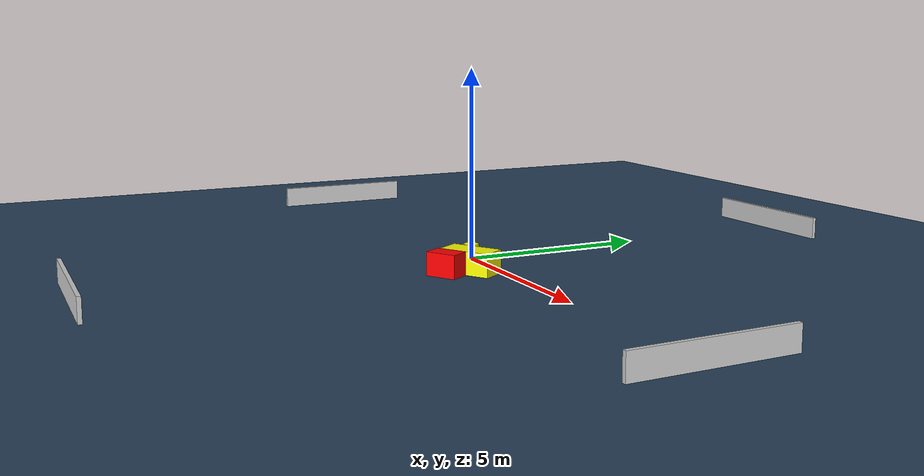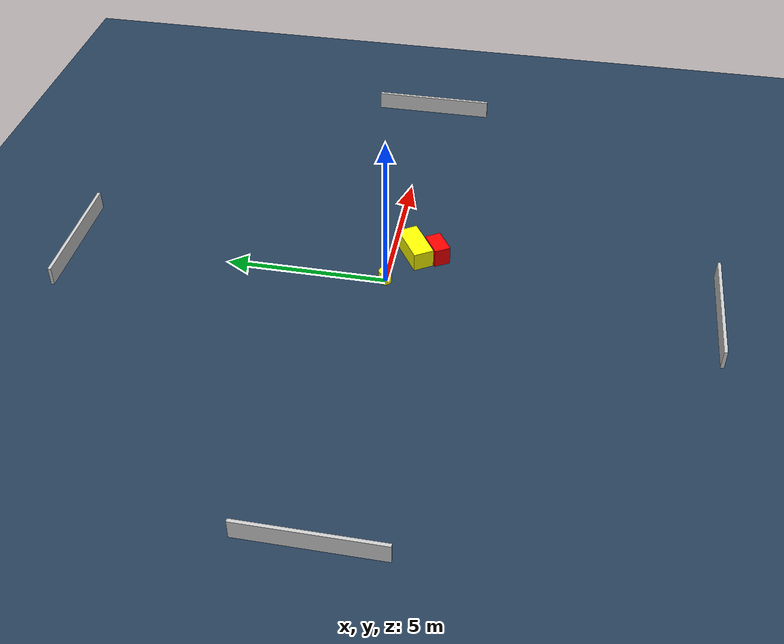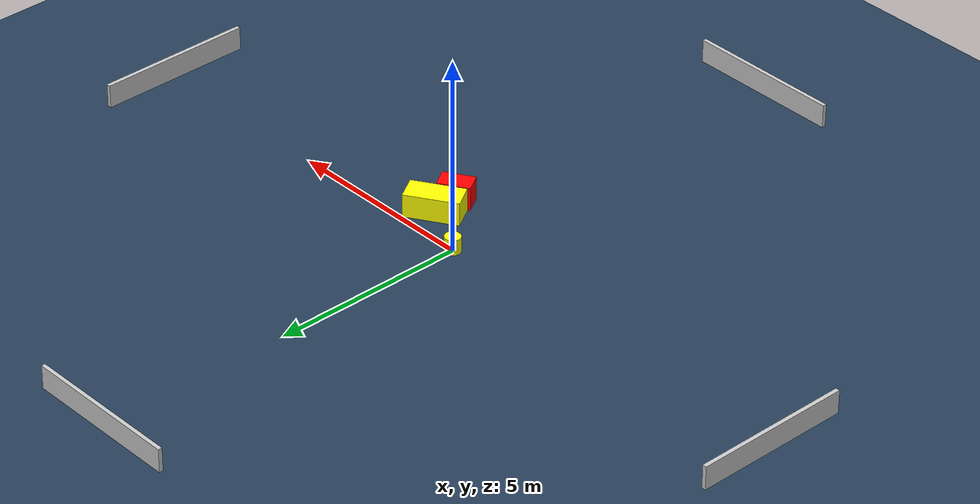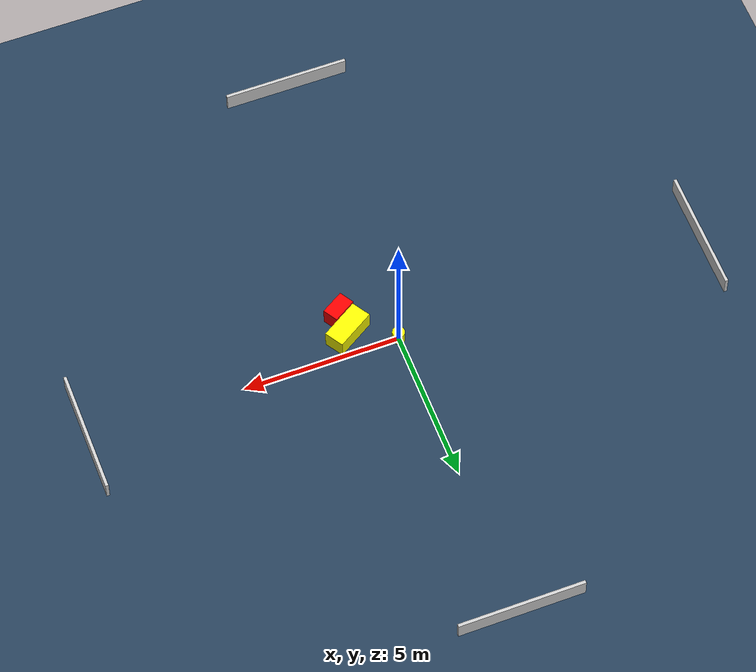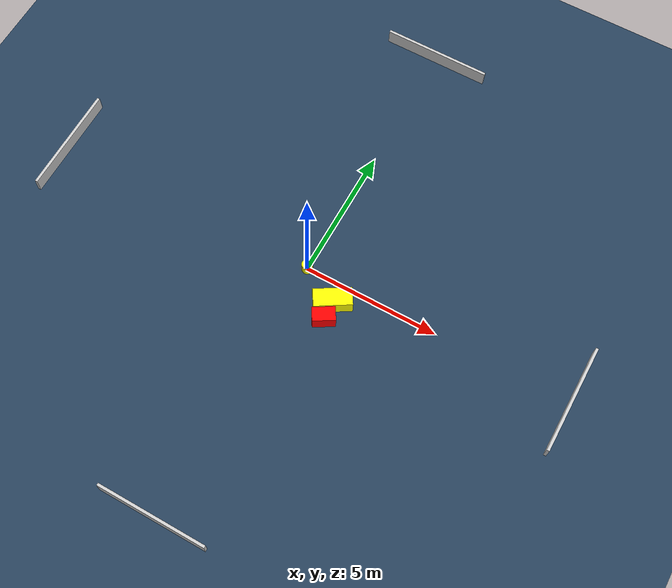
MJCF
<?xml version="1.0" ?>
<mujoco model="generated_environment">
  <option timestep="0.01" integrator="RK4" cone="elliptic"/>
  <default>
    <geom density="1"/>
  </default>
  <asset>
    <texture builtin="gradient" height="3072" name="skybox" rgb1="0.3 0.5 0.7" rgb2="0 0 0" type="skybox" width="512"/>
    <texture builtin="checker" height="300" name="groundplane" rgb1="0.2 0.3 0.4" rgb2="0.1 0.2 0.3" type="2d" width="300"/>
    <material name="groundplane" reflectance="0.2" texrepeat="5 5" texture="groundplane"/>
  </asset>
  <worldbody>
    <light dir="0 0 -1" directional="true" pos="0 0 1.5"/>
    <geom condim="3" friction="0.5 0.005 0.001" material="groundplane" name="floor" pos="0 0 0" size="0 0 0.05" type="plane"/>
    <body name="walls">
      <geom name="wall_1" condim="4" pos="-10.0 0.0 0.3" rgba="0.800000011920929 0.800000011920929 0.800000011920929 1.0" size="0.05 2.0 0.3" type="box"/>
      <geom name="wall_2" condim="4" pos="10.0 0.0 0.3" rgba="0.800000011920929 0.800000011920929 0.800000011920929 1.0" size="0.05 2.0 0.3" type="box"/>
      <geom name="wall_3" condim="4" pos="0.0 -10.0 0.3" rgba="0.800000011920929 0.800000011920929 0.800000011920929 1.0" size="2.0 0.05 0.3" type="box"/>
      <geom name="wall_4" condim="4" pos="0.0 10.0 0.3" rgba="0.800000011920929 0.800000011920929 0.800000011920929 1.0" size="2.0 0.05 0.3" type="box"/>
    </body>
    <body name="robot">
      <joint name="joint_x" type="slide" pos="0 0 0" axis="1 0 0"/>
      <joint name="joint_y" type="slide" pos="0 0 0" axis="0 1 0"/>
      <geom name="robot" type="cylinder" pos="0.0 0.0 0.2" size="0.2 0.2 0.0" mass="5.0" friction="1.0 0.005 0.0001" condim="4" rgba="1.0 1.0 0.0 1.0"/>
    </body>
    <body name="obstacle_1_movable">
      <geom name="obstacle_1_movable" condim="4" pos="1.3933339084309768 -0.7054162035605716 0.3" euler="0 0 31.79948029032388" friction="0.0 0.005 0.001" rgba="1.0 1.0 0.0 1.0" size="0.6820797555923575 0.3250957847753695 0.3" type="box" mass="0.1"/>
      <joint type="free"/>
    </body>
    <body name="obstacle_2_static">
      <geom name="obstacle_2_static" condim="4" pos="1.4280913273635043 -1.3992553695475562 0.3" euler="0 0 121.43330919987667" friction="0.0 0.005 0.001" rgba="1.0 0.0 0.0 1.0" size="0.2557077713982568 0.40868469025596454 0.3" type="box"/>
    </body>
  </worldbody>
  <actuator>
    <motor name="actuator_x" joint="joint_x" gear="1" ctrlrange="-1 1"/>
    <motor name="actuator_y" joint="joint_y" gear="1" ctrlrange="-1 1"/>
  </actuator>
</mujoco>
